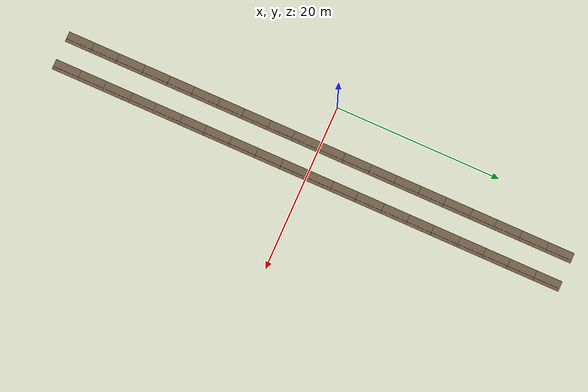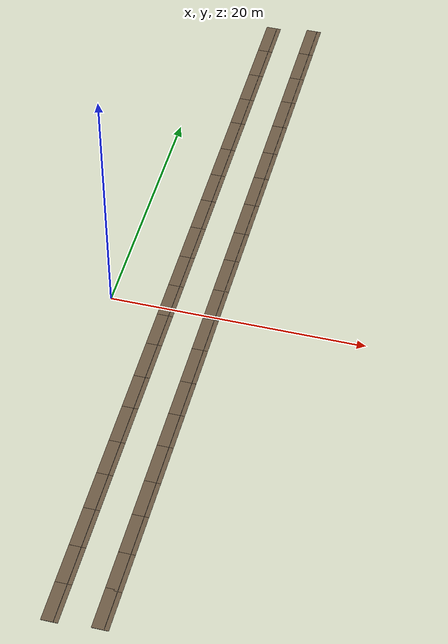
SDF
<sdf version="1.9">
 <world name="orchard_10x41">
  <model name="understory_r6">
   <static>true</static>
   <link name="link">
    <visual name="soil_1">
     <pose>5.250 -29.450 2.820 0.0000 0.0000 0.0000</pose>
     <geometry><box><size>1.2000 3.2240 0.0300</size></box></geometry>
     <material>
      <ambient>0.400 0.330 0.250 1</ambient>
      <diffuse>0.440 0.363 0.275 1</diffuse>
      <specular>0.120 0.099 0.075 1</specular>
     </material>
     <plugin filename="gz-sim-label-system" name="gz::sim::systems::Label"><label>66</label></plugin>
    </visual>
    <visual name="soil_2">
     <pose>5.250 -26.350 2.820 -0.0001 0.0000 0.0000</pose>
     <geometry><box><size>1.2000 3.2240 0.0300</size></box></geometry>
     <material>
      <ambient>0.400 0.330 0.250 1</ambient>
      <diffuse>0.440 0.363 0.275 1</diffuse>
      <specular>0.120 0.099 0.075 1</specular>
     </material>
     <plugin filename="gz-sim-label-system" name="gz::sim::systems::Label"><label>66</label></plugin>
    </visual>
    <visual name="soil_3">
     <pose>5.250 -23.250 2.820 -0.0002 0.0000 0.0000</pose>
     <geometry><box><size>1.2000 3.2240 0.0300</size></box></geometry>
     <material>
      <ambient>0.400 0.330 0.250 1</ambient>
      <diffuse>0.440 0.363 0.275 1</diffuse>
      <specular>0.120 0.099 0.075 1</specular>
     </material>
     <plugin filename="gz-sim-label-system" name="gz::sim::systems::Label"><label>66</label></plugin>
    </visual>
    <visual name="soil_4">
     <pose>5.250 -20.150 2.819 0.0000 0.0000 0.0000</pose>
     <geometry><box><size>1.2000 3.2240 0.0300</size></box></geometry>
     <material>
      <ambient>0.400 0.330 0.250 1</ambient>
      <diffuse>0.440 0.363 0.275 1</diffuse>
      <specular>0.120 0.099 0.075 1</specular>
     </material>
     <plugin filename="gz-sim-label-system" name="gz::sim::systems::Label"><label>66</label></plugin>
    </visual>
    <visual name="soil_5">
     <pose>5.250 -17.050 2.820 0.0007 0.0000 0.0000</pose>
     <geometry><box><size>1.2000 3.2240 0.0300</size></box></geometry>
     <material>
      <ambient>0.400 0.330 0.250 1</ambient>
      <diffuse>0.440 0.363 0.275 1</diffuse>
      <specular>0.120 0.099 0.075 1</specular>
     </material>
     <plugin filename="gz-sim-label-system" name="gz::sim::systems::Label"><label>66</label></plugin>
    </visual>
    <visual name="soil_6">
     <pose>5.250 -13.950 2.822 0.0002 0.0000 0.0000</pose>
     <geometry><box><size>1.2000 3.2240 0.0300</size></box></geometry>
     <material>
      <ambient>0.400 0.330 0.250 1</ambient>
      <diffuse>0.440 0.363 0.275 1</diffuse>
      <specular>0.120 0.099 0.075 1</specular>
     </material>
     <plugin filename="gz-sim-label-system" name="gz::sim::systems::Label"><label>66</label></plugin>
    </visual>
    <visual name="soil_7">
     <pose>5.250 -10.850 2.822 -0.0001 0.0000 0.0000</pose>
     <geometry><box><size>1.2000 3.2240 0.0300</size></box></geometry>
     <material>
      <ambient>0.400 0.330 0.250 1</ambient>
      <diffuse>0.440 0.363 0.275 1</diffuse>
      <specular>0.120 0.099 0.075 1</specular>
     </material>
     <plugin filename="gz-sim-label-system" name="gz::sim::systems::Label"><label>66</label></plugin>
    </visual>
    <visual name="soil_8">
     <pose>5.250 -7.750 2.823 0.0006 0.0000 0.0000</pose>
     <geometry><box><size>1.2000 3.2240 0.0300</size></box></geometry>
     <material>
      <ambient>0.400 0.330 0.250 1</ambient>
      <diffuse>0.440 0.363 0.275 1</diffuse>
      <specular>0.120 0.099 0.075 1</specular>
     </material>
     <plugin filename="gz-sim-label-system" name="gz::sim::systems::Label"><label>66</label></plugin>
    </visual>
    <visual name="soil_9">
     <pose>5.250 -4.650 2.823 -0.0001 0.0000 0.0000</pose>
     <geometry><box><size>1.2000 3.2240 0.0300</size></box></geometry>
     <material>
      <ambient>0.400 0.330 0.250 1</ambient>
      <diffuse>0.440 0.363 0.275 1</diffuse>
      <specular>0.120 0.099 0.075 1</specular>
     </material>
     <plugin filename="gz-sim-label-system" name="gz::sim::systems::Label"><label>66</label></plugin>
    </visual>
    <visual name="soil_10">
     <pose>5.250 -1.550 2.823 -0.0001 0.0000 0.0000</pose>
     <geometry><box><size>1.2000 3.2240 0.0300</size></box></geometry>
     <material>
      <ambient>0.400 0.330 0.250 1</ambient>
      <diffuse>0.440 0.363 0.275 1</diffuse>
      <specular>0.120 0.099 0.075 1</specular>
     </material>
     <plugin filename="gz-sim-label-system" name="gz::sim::systems::Label"><label>66</label></plugin>
    </visual>
    <visual name="soil_11">
     <pose>5.250 1.550 2.822 -0.0007 0.0000 0.0000</pose>
     <geometry><box><size>1.2000 3.2240 0.0300</size></box></geometry>
     <material>
      <ambient>0.400 0.330 0.250 1</ambient>
      <diffuse>0.440 0.363 0.275 1</diffuse>
      <specular>0.120 0.099 0.075 1</specular>
     </material>
     <plugin filename="gz-sim-label-system" name="gz::sim::systems::Label"><label>66</label></plugin>
    </visual>
    <visual name="soil_12">
     <pose>5.250 4.650 2.820 -0.0007 0.0000 0.0000</pose>
     <geometry><box><size>1.2000 3.2240 0.0300</size></box></geometry>
     <material>
      <ambient>0.400 0.330 0.250 1</ambient>
      <diffuse>0.440 0.363 0.275 1</diffuse>
      <specular>0.120 0.099 0.075 1</specular>
     </material>
     <plugin filename="gz-sim-label-system" name="gz::sim::systems::Label"><label>66</label></plugin>
    </visual>
    <visual name="soil_13">
     <pose>5.250 7.750 2.818 -0.0004 0.0000 0.0000</pose>
     <geometry><box><size>1.2000 3.2240 0.0300</size></box></geometry>
     <material>
      <ambient>0.400 0.330 0.250 1</ambient>
      <diffuse>0.440 0.363 0.275 1</diffuse>
      <specular>0.120 0.099 0.075 1</specular>
     </material>
     <plugin filename="gz-sim-label-system" name="gz::sim::systems::Label"><label>66</label></plugin>
    </visual>
    <visual name="soil_14">
     <pose>5.250 10.850 2.817 -0.0002 0.0000 0.0000</pose>
     <geometry><box><size>1.2000 3.2240 0.0300</size></box></geometry>
     <material>
      <ambient>0.400 0.330 0.250 1</ambient>
      <diffuse>0.440 0.363 0.275 1</diffuse>
      <specular>0.120 0.099 0.075 1</specular>
     </material>
     <plugin filename="gz-sim-label-system" name="gz::sim::systems::Label"><label>66</label></plugin>
    </visual>
    <visual name="soil_15">
     <pose>5.250 13.950 2.817 0.0001 0.0000 0.0000</pose>
     <geometry><box><size>1.2000 3.2240 0.0300</size></box></geometry>
     <material>
      <ambient>0.400 0.330 0.250 1</ambient>
      <diffuse>0.440 0.363 0.275 1</diffuse>
      <specular>0.120 0.099 0.075 1</specular>
     </material>
     <plugin filename="gz-sim-label-system" name="gz::sim::systems::Label"><label>66</label></plugin>
    </visual>
    <visual name="soil_16">
     <pose>5.250 17.050 2.817 -0.0004 0.0000 0.0000</pose>
     <geometry><box><size>1.2000 3.2240 0.0300</size></box></geometry>
     <material>
      <ambient>0.400 0.330 0.250 1</ambient>
      <diffuse>0.440 0.363 0.275 1</diffuse>
      <specular>0.120 0.099 0.075 1</specular>
     </material>
     <plugin filename="gz-sim-label-system" name="gz::sim::systems::Label"><label>66</label></plugin>
    </visual>
    <visual name="soil_17">
     <pose>5.250 20.150 2.816 -0.0001 0.0000 0.0000</pose>
     <geometry><box><size>1.2000 3.2240 0.0300</size></box></geometry>
     <material>
      <ambient>0.400 0.330 0.250 1</ambient>
      <diffuse>0.440 0.363 0.275 1</diffuse>
      <specular>0.120 0.099 0.075 1</specular>
     </material>
     <plugin filename="gz-sim-label-system" name="gz::sim::systems::Label"><label>66</label></plugin>
    </visual>
    <visual name="soil_18">
     <pose>5.250 23.250 2.816 -0.0000 0.0000 0.0000</pose>
     <geometry><box><size>1.2000 3.2240 0.0300</size></box></geometry>
     <material>
      <ambient>0.400 0.330 0.250 1</ambient>
      <diffuse>0.440 0.363 0.275 1</diffuse>
      <specular>0.120 0.099 0.075 1</specular>
     </material>
     <plugin filename="gz-sim-label-system" name="gz::sim::systems::Label"><label>66</label></plugin>
    </visual>
    <visual name="soil_19">
     <pose>5.250 26.350 2.817 0.0005 0.0000 0.0000</pose>
     <geometry><box><size>1.2000 3.2240 0.0300</size></box></geometry>
     <material>
      <ambient>0.400 0.330 0.250 1</ambient>
      <diffuse>0.440 0.363 0.275 1</diffuse>
      <specular>0.120 0.099 0.075 1</specular>
     </material>
     <plugin filename="gz-sim-label-system" name="gz::sim::systems::Label"><label>66</label></plugin>
    </visual>
    <visual name="soil_20">
     <pose>5.250 29.450 2.818 0.0004 0.0000 0.0000</pose>
     <geometry><box><size>1.2000 3.2240 0.0300</size></box></geometry>
     <material>
      <ambient>0.400 0.330 0.250 1</ambient>
      <diffuse>0.440 0.363 0.275 1</diffuse>
      <specular>0.120 0.099 0.075 1</specular>
     </material>
     <plugin filename="gz-sim-label-system" name="gz::sim::systems::Label"><label>66</label></plugin>
    </visual>
    <visual name="drip_21">
     <pose>5.530 -29.450 2.850 1.5708 0.0000 0.0000</pose>
     <geometry><cylinder><radius>0.0110</radius><length>3.1620</length></cylinder></geometry>
     <material>
      <ambient>0.100 0.100 0.110 1</ambient>
      <diffuse>0.110 0.110 0.121 1</diffuse>
      <specular>0.030 0.030 0.033 1</specular>
     </material>
     <plugin filename="gz-sim-label-system" name="gz::sim::systems::Label"><label>67</label></plugin>
    </visual>
    <visual name="drip_22">
     <pose>5.530 -26.350 2.850 1.5707 0.0000 0.0000</pose>
     <geometry><cylinder><radius>0.0110</radius><length>3.1620</length></cylinder></geometry>
     <material>
      <ambient>0.100 0.100 0.110 1</ambient>
      <diffuse>0.110 0.110 0.121 1</diffuse>
      <specular>0.030 0.030 0.033 1</specular>
     </material>
     <plugin filename="gz-sim-label-system" name="gz::sim::systems::Label"><label>67</label></plugin>
    </visual>
    <visual name="drip_23">
     <pose>5.530 -23.250 2.850 1.5706 0.0000 0.0000</pose>
     <geometry><cylinder><radius>0.0110</radius><length>3.1620</length></cylinder></geometry>
     <material>
      <ambient>0.100 0.100 0.110 1</ambient>
      <diffuse>0.110 0.110 0.121 1</diffuse>
      <specular>0.030 0.030 0.033 1</specular>
     </material>
     <plugin filename="gz-sim-label-system" name="gz::sim::systems::Label"><label>67</label></plugin>
    </visual>
    <visual name="drip_24">
     <pose>5.530 -20.150 2.849 1.5708 0.0000 0.0000</pose>
     <geometry><cylinder><radius>0.0110</radius><length>3.1620</length></cylinder></geometry>
     <material>
      <ambient>0.100 0.100 0.110 1</ambient>
      <diffuse>0.110 0.110 0.121 1</diffuse>
      <specular>0.030 0.030 0.033 1</specular>
     </material>
     <plugin filename="gz-sim-label-system" name="gz::sim::systems::Label"><label>67</label></plugin>
    </visual>
    <visual name="drip_25">
     <pose>5.530 -17.050 2.850 1.5715 0.0000 0.0000</pose>
     <geometry><cylinder><radius>0.0110</radius><length>3.1620</length></cylinder></geometry>
     <material>
      <ambient>0.100 0.100 0.110 1</ambient>
      <diffuse>0.110 0.110 0.121 1</diffuse>
      <specular>0.030 0.030 0.033 1</specular>
     </material>
     <plugin filename="gz-sim-label-system" name="gz::sim::systems::Label"><label>67</label></plugin>
    </visual>
    <visual name="drip_26">
     <pose>5.530 -13.950 2.852 1.5710 0.0000 0.0000</pose>
     <geometry><cylinder><radius>0.0110</radius><length>3.1620</length></cylinder></geometry>
     <material>
      <ambient>0.100 0.100 0.110 1</ambient>
      <diffuse>0.110 0.110 0.121 1</diffuse>
      <specular>0.030 0.030 0.033 1</specular>
     </material>
     <plugin filename="gz-sim-label-system" name="gz::sim::systems::Label"><label>67</label></plugin>
    </visual>
    <visual name="drip_27">
     <pose>5.530 -10.850 2.852 1.5707 0.0000 0.0000</pose>
     <geometry><cylinder><radius>0.0110</radius><length>3.1620</length></cylinder></geometry>
     <material>
      <ambient>0.100 0.100 0.110 1</ambient>
      <diffuse>0.110 0.110 0.121 1</diffuse>
      <specular>0.030 0.030 0.033 1</specular>
     </material>
     <plugin filename="gz-sim-label-system" name="gz::sim::systems::Label"><label>67</label></plugin>
    </visual>
    <visual name="drip_28">
     <pose>5.530 -7.750 2.853 1.5714 0.0000 0.0000</pose>
     <geometry><cylinder><radius>0.0110</radius><length>3.1620</length></cylinder></geometry>
     <material>
      <ambient>0.100 0.100 0.110 1</ambient>
      <diffuse>0.110 0.110 0.121 1</diffuse>
      <specular>0.030 0.030 0.033 1</specular>
     </material>
     <plugin filename="gz-sim-label-system" name="gz::sim::systems::Label"><label>67</label></plugin>
    </visual>
    <visual name="drip_29">
     <pose>5.530 -4.650 2.853 1.5707 0.0000 0.0000</pose>
     <geometry><cylinder><radius>0.0110</radius><length>3.1620</length></cylinder></geometry>
     <material>
      <ambient>0.100 0.100 0.110 1</ambient>
      <diffuse>0.110 0.110 0.121 1</diffuse>
      <specular>0.030 0.030 0.033 1</specular>
     </material>
     <plugin filename="gz-sim-label-system" name="gz::sim::systems::Label"><label>67</label></plugin>
    </visual>
    <visual name="drip_30">
     <pose>5.530 -1.550 2.853 1.5707 0.0000 0.0000</pose>
     <geometry><cylinder><radius>0.0110</radius><length>3.1620</length></cylinder></geometry>
     <material>
      <ambient>0.100 0.100 0.110 1</ambient>
      <diffuse>0.110 0.110 0.121 1</diffuse>
      <specular>0.030 0.030 0.033 1</specular>
     </material>
     <plugin filename="gz-sim-label-system" name="gz::sim::systems::Label"><label>67</label></plugin>
    </visual>
    <visual name="drip_31">
     <pose>5.530 1.550 2.852 1.5701 0.0000 0.0000</pose>
     <geometry><cylinder><radius>0.0110</radius><length>3.1620</length></cylinder></geometry>
     <material>
      <ambient>0.100 0.100 0.110 1</ambient>
      <diffuse>0.110 0.110 0.121 1</diffuse>
      <specular>0.030 0.030 0.033 1</specular>
     </material>
     <plugin filename="gz-sim-label-system" name="gz::sim::systems::Label"><label>67</label></plugin>
    </visual>
    <visual name="drip_32">
     <pose>5.530 4.650 2.850 1.5701 0.0000 0.0000</pose>
     <geometry><cylinder><radius>0.0110</radius><length>3.1620</length></cylinder></geometry>
     <material>
      <ambient>0.100 0.100 0.110 1</ambient>
      <diffuse>0.110 0.110 0.121 1</diffuse>
      <specular>0.030 0.030 0.033 1</specular>
     </material>
     <plugin filename="gz-sim-label-system" name="gz::sim::systems::Label"><label>67</label></plugin>
    </visual>
    <visual name="drip_33">
     <pose>5.530 7.750 2.848 1.5704 0.0000 0.0000</pose>
     <geometry><cylinder><radius>0.0110</radius><length>3.1620</length></cylinder></geometry>
     <material>
      <ambient>0.100 0.100 0.110 1</ambient>
      <diffuse>0.110 0.110 0.121 1</diffuse>
      <specular>0.030 0.030 0.033 1</specular>
     </material>
     <plugin filename="gz-sim-label-system" name="gz::sim::systems::Label"><label>67</label></plugin>
    </visual>
    <visual name="drip_34">
     <pose>5.530 10.850 2.847 1.5706 0.0000 0.0000</pose>
     <geometry><cylinder><radius>0.0110</radius><length>3.1620</length></cylinder></geometry>
     <material>
      <ambient>0.100 0.100 0.110 1</ambient>
      <diffuse>0.110 0.110 0.121 1</diffuse>
      <specular>0.030 0.030 0.033 1</specular>
     </material>
     <plugin filename="gz-sim-label-system" name="gz::sim::systems::Label"><label>67</label></plugin>
    </visual>
    <visual name="drip_35">
     <pose>5.530 13.950 2.847 1.5709 0.0000 0.0000</pose>
     <geometry><cylinder><radius>0.0110</radius><length>3.1620</length></cylinder></geometry>
     <material>
      <ambient>0.100 0.100 0.110 1</ambient>
      <diffuse>0.110 0.110 0.121 1</diffuse>
      <specular>0.030 0.030 0.033 1</specular>
     </material>
     <plugin filename="gz-sim-label-system" name="gz::sim::systems::Label"><label>67</label></plugin>
    </visual>
    <visual name="drip_36">
     <pose>5.530 17.050 2.847 1.5704 0.0000 0.0000</pose>
     <geometry><cylinder><radius>0.0110</radius><length>3.1620</length></cylinder></geometry>
     <material>
      <ambient>0.100 0.100 0.110 1</ambient>
      <diffuse>0.110 0.110 0.121 1</diffuse>
      <specular>0.030 0.030 0.033 1</specular>
     </material>
     <plugin filename="gz-sim-label-system" name="gz::sim::systems::Label"><label>67</label></plugin>
    </visual>
    <visual name="drip_37">
     <pose>5.530 20.150 2.846 1.5707 0.0000 0.0000</pose>
     <geometry><cylinder><radius>0.0110</radius><length>3.1620</length></cylinder></geometry>
     <material>
      <ambient>0.100 0.100 0.110 1</ambient>
      <diffuse>0.110 0.110 0.121 1</diffuse>
      <specular>0.030 0.030 0.033 1</specular>
     </material>
     <plugin filename="gz-sim-label-system" name="gz::sim::systems::Label"><label>67</label></plugin>
    </visual>
    <visual name="drip_38">
     <pose>5.530 23.250 2.846 1.5708 0.0000 0.0000</pose>
     <geometry><cylinder><radius>0.0110</radius><length>3.1620</length></cylinder></geometry>
     <material>
      <ambient>0.100 0.100 0.110 1</ambient>
      <diffuse>0.110 0.110 0.121 1</diffuse>
      <specular>0.030 0.030 0.033 1</specular>
     </material>
     <plugin filename="gz-sim-label-system" name="gz::sim::systems::Label"><label>67</label></plugin>
    </visual>
    <visual name="drip_39">
     <pose>5.530 26.350 2.847 1.5713 0.0000 0.0000</pose>
     <geometry><cylinder><radius>0.0110</radius><length>3.1620</length></cylinder></geometry>
     <material>
      <ambient>0.100 0.100 0.110 1</ambient>
      <diffuse>0.110 0.110 0.121 1</diffuse>
      <specular>0.030 0.030 0.033 1</specular>
     </material>
     <plugin filename="gz-sim-label-system" name="gz::sim::systems::Label"><label>67</label></plugin>
    </visual>
    <visual name="drip_40">
     <pose>5.530 29.450 2.848 1.5712 0.0000 0.0000</pose>
     <geometry><cylinder><radius>0.0110</radius><length>3.1620</length></cylinder></geometry>
     <material>
      <ambient>0.100 0.100 0.110 1</ambient>
      <diffuse>0.110 0.110 0.121 1</diffuse>
      <specular>0.030 0.030 0.033 1</specular>
     </material>
     <plugin filename="gz-sim-label-system" name="gz::sim::systems::Label"><label>67</label></plugin>
    </visual>
   </link>
  </model>
  <model name="understory_r7">
   <static>true</static>
   <link name="link">
    <visual name="soil_1">
     <pose>8.750 -29.450 3.199 -0.0000 0.0000 0.0000</pose>
     <geometry><box><size>1.2000 3.2240 0.0300</size></box></geometry>
     <material>
      <ambient>0.400 0.330 0.250 1</ambient>
      <diffuse>0.440 0.363 0.275 1</diffuse>
      <specular>0.120 0.099 0.075 1</specular>
     </material>
     <plugin filename="gz-sim-label-system" name="gz::sim::systems::Label"><label>66</label></plugin>
    </visual>
    <visual name="soil_2">
     <pose>8.750 -26.350 3.199 0.0000 0.0000 0.0000</pose>
     <geometry><box><size>1.2000 3.2240 0.0300</size></box></geometry>
     <material>
      <ambient>0.400 0.330 0.250 1</ambient>
      <diffuse>0.440 0.363 0.275 1</diffuse>
      <specular>0.120 0.099 0.075 1</specular>
     </material>
     <plugin filename="gz-sim-label-system" name="gz::sim::systems::Label"><label>66</label></plugin>
    </visual>
    <visual name="soil_3">
     <pose>8.750 -23.250 3.200 0.0001 0.0000 0.0000</pose>
     <geometry><box><size>1.2000 3.2240 0.0300</size></box></geometry>
     <material>
      <ambient>0.400 0.330 0.250 1</ambient>
      <diffuse>0.440 0.363 0.275 1</diffuse>
      <specular>0.120 0.099 0.075 1</specular>
     </material>
     <plugin filename="gz-sim-label-system" name="gz::sim::systems::Label"><label>66</label></plugin>
    </visual>
    <visual name="soil_4">
     <pose>8.750 -20.150 3.200 0.0001 0.0000 0.0000</pose>
     <geometry><box><size>1.2000 3.2240 0.0300</size></box></geometry>
     <material>
      <ambient>0.400 0.330 0.250 1</ambient>
      <diffuse>0.440 0.363 0.275 1</diffuse>
      <specular>0.120 0.099 0.075 1</specular>
     </material>
     <plugin filename="gz-sim-label-system" name="gz::sim::systems::Label"><label>66</label></plugin>
    </visual>
    <visual name="soil_5">
     <pose>8.750 -17.050 3.201 0.0005 0.0000 0.0000</pose>
     <geometry><box><size>1.2000 3.2240 0.0300</size></box></geometry>
     <material>
      <ambient>0.400 0.330 0.250 1</ambient>
      <diffuse>0.440 0.363 0.275 1</diffuse>
      <specular>0.120 0.099 0.075 1</specular>
     </material>
     <plugin filename="gz-sim-label-system" name="gz::sim::systems::Label"><label>66</label></plugin>
    </visual>
    <visual name="soil_6">
     <pose>8.750 -13.950 3.202 0.0004 0.0000 0.0000</pose>
     <geometry><box><size>1.2000 3.2240 0.0300</size></box></geometry>
     <material>
      <ambient>0.400 0.330 0.250 1</ambient>
      <diffuse>0.440 0.363 0.275 1</diffuse>
      <specular>0.120 0.099 0.075 1</specular>
     </material>
     <plugin filename="gz-sim-label-system" name="gz::sim::systems::Label"><label>66</label></plugin>
    </visual>
    <visual name="soil_7">
     <pose>8.750 -10.850 3.203 0.0001 0.0000 0.0000</pose>
     <geometry><box><size>1.2000 3.2240 0.0300</size></box></geometry>
     <material>
      <ambient>0.400 0.330 0.250 1</ambient>
      <diffuse>0.440 0.363 0.275 1</diffuse>
      <specular>0.120 0.099 0.075 1</specular>
     </material>
     <plugin filename="gz-sim-label-system" name="gz::sim::systems::Label"><label>66</label></plugin>
    </visual>
    <visual name="soil_8">
     <pose>8.750 -7.750 3.204 0.0003 0.0000 0.0000</pose>
     <geometry><box><size>1.2000 3.2240 0.0300</size></box></geometry>
     <material>
      <ambient>0.400 0.330 0.250 1</ambient>
      <diffuse>0.440 0.363 0.275 1</diffuse>
      <specular>0.120 0.099 0.075 1</specular>
     </material>
     <plugin filename="gz-sim-label-system" name="gz::sim::systems::Label"><label>66</label></plugin>
    </visual>
    <visual name="soil_9">
     <pose>8.750 -4.650 3.204 -0.0001 0.0000 0.0000</pose>
     <geometry><box><size>1.2000 3.2240 0.0300</size></box></geometry>
     <material>
      <ambient>0.400 0.330 0.250 1</ambient>
      <diffuse>0.440 0.363 0.275 1</diffuse>
      <specular>0.120 0.099 0.075 1</specular>
     </material>
     <plugin filename="gz-sim-label-system" name="gz::sim::systems::Label"><label>66</label></plugin>
    </visual>
    <visual name="soil_10">
     <pose>8.750 -1.550 3.203 -0.0003 0.0000 0.0000</pose>
     <geometry><box><size>1.2000 3.2240 0.0300</size></box></geometry>
     <material>
      <ambient>0.400 0.330 0.250 1</ambient>
      <diffuse>0.440 0.363 0.275 1</diffuse>
      <specular>0.120 0.099 0.075 1</specular>
     </material>
     <plugin filename="gz-sim-label-system" name="gz::sim::systems::Label"><label>66</label></plugin>
    </visual>
    <visual name="soil_11">
     <pose>8.750 1.550 3.203 0.0001 0.0000 0.0000</pose>
     <geometry><box><size>1.2000 3.2240 0.0300</size></box></geometry>
     <material>
      <ambient>0.400 0.330 0.250 1</ambient>
      <diffuse>0.440 0.363 0.275 1</diffuse>
      <specular>0.120 0.099 0.075 1</specular>
     </material>
     <plugin filename="gz-sim-label-system" name="gz::sim::systems::Label"><label>66</label></plugin>
    </visual>
    <visual name="soil_12">
     <pose>8.750 4.650 3.203 0.0001 0.0000 0.0000</pose>
     <geometry><box><size>1.2000 3.2240 0.0300</size></box></geometry>
     <material>
      <ambient>0.400 0.330 0.250 1</ambient>
      <diffuse>0.440 0.363 0.275 1</diffuse>
      <specular>0.120 0.099 0.075 1</specular>
     </material>
     <plugin filename="gz-sim-label-system" name="gz::sim::systems::Label"><label>66</label></plugin>
    </visual>
    <visual name="soil_13">
     <pose>8.750 7.750 3.204 0.0002 0.0000 0.0000</pose>
     <geometry><box><size>1.2000 3.2240 0.0300</size></box></geometry>
     <material>
      <ambient>0.400 0.330 0.250 1</ambient>
      <diffuse>0.440 0.363 0.275 1</diffuse>
      <specular>0.120 0.099 0.075 1</specular>
     </material>
     <plugin filename="gz-sim-label-system" name="gz::sim::systems::Label"><label>66</label></plugin>
    </visual>
    <visual name="soil_14">
     <pose>8.750 10.850 3.204 -0.0001 0.0000 0.0000</pose>
     <geometry><box><size>1.2000 3.2240 0.0300</size></box></geometry>
     <material>
      <ambient>0.400 0.330 0.250 1</ambient>
      <diffuse>0.440 0.363 0.275 1</diffuse>
      <specular>0.120 0.099 0.075 1</specular>
     </material>
     <plugin filename="gz-sim-label-system" name="gz::sim::systems::Label"><label>66</label></plugin>
    </visual>
    <visual name="soil_15">
     <pose>8.750 13.950 3.203 -0.0003 0.0000 0.0000</pose>
     <geometry><box><size>1.2000 3.2240 0.0300</size></box></geometry>
     <material>
      <ambient>0.400 0.330 0.250 1</ambient>
      <diffuse>0.440 0.363 0.275 1</diffuse>
      <specular>0.120 0.099 0.075 1</specular>
     </material>
     <plugin filename="gz-sim-label-system" name="gz::sim::systems::Label"><label>66</label></plugin>
    </visual>
    <visual name="soil_16">
     <pose>8.750 17.050 3.202 -0.0004 0.0000 0.0000</pose>
     <geometry><box><size>1.2000 3.2240 0.0300</size></box></geometry>
     <material>
      <ambient>0.400 0.330 0.250 1</ambient>
      <diffuse>0.440 0.363 0.275 1</diffuse>
      <specular>0.120 0.099 0.075 1</specular>
     </material>
     <plugin filename="gz-sim-label-system" name="gz::sim::systems::Label"><label>66</label></plugin>
    </visual>
    <visual name="soil_17">
     <pose>8.750 20.150 3.201 -0.0001 0.0000 0.0000</pose>
     <geometry><box><size>1.2000 3.2240 0.0300</size></box></geometry>
     <material>
      <ambient>0.400 0.330 0.250 1</ambient>
      <diffuse>0.440 0.363 0.275 1</diffuse>
      <specular>0.120 0.099 0.075 1</specular>
     </material>
     <plugin filename="gz-sim-label-system" name="gz::sim::systems::Label"><label>66</label></plugin>
    </visual>
    <visual name="soil_18">
     <pose>8.750 23.250 3.201 0.0001 0.0000 0.0000</pose>
     <geometry><box><size>1.2000 3.2240 0.0300</size></box></geometry>
     <material>
      <ambient>0.400 0.330 0.250 1</ambient>
      <diffuse>0.440 0.363 0.275 1</diffuse>
      <specular>0.120 0.099 0.075 1</specular>
     </material>
     <plugin filename="gz-sim-label-system" name="gz::sim::systems::Label"><label>66</label></plugin>
    </visual>
    <visual name="soil_19">
     <pose>8.750 26.350 3.202 0.0002 0.0000 0.0000</pose>
     <geometry><box><size>1.2000 3.2240 0.0300</size></box></geometry>
     <material>
      <ambient>0.400 0.330 0.250 1</ambient>
      <diffuse>0.440 0.363 0.275 1</diffuse>
      <specular>0.120 0.099 0.075 1</specular>
     </material>
     <plugin filename="gz-sim-label-system" name="gz::sim::systems::Label"><label>66</label></plugin>
    </visual>
    <visual name="soil_20">
     <pose>8.750 29.450 3.202 -0.0001 0.0000 0.0000</pose>
     <geometry><box><size>1.2000 3.2240 0.0300</size></box></geometry>
     <material>
      <ambient>0.400 0.330 0.250 1</ambient>
      <diffuse>0.440 0.363 0.275 1</diffuse>
      <specular>0.120 0.099 0.075 1</specular>
     </material>
     <plugin filename="gz-sim-label-system" name="gz::sim::systems::Label"><label>66</label></plugin>
    </visual>
    <visual name="drip_21">
     <pose>9.030 -29.450 3.229 1.5708 0.0000 0.0000</pose>
     <geometry><cylinder><radius>0.0110</radius><length>3.1620</length></cylinder></geometry>
     <material>
      <ambient>0.100 0.100 0.110 1</ambient>
      <diffuse>0.110 0.110 0.121 1</diffuse>
      <specular>0.030 0.030 0.033 1</specular>
     </material>
     <plugin filename="gz-sim-label-system" name="gz::sim::systems::Label"><label>67</label></plugin>
    </visual>
    <visual name="drip_22">
     <pose>9.030 -26.350 3.229 1.5708 0.0000 0.0000</pose>
     <geometry><cylinder><radius>0.0110</radius><length>3.1620</length></cylinder></geometry>
     <material>
      <ambient>0.100 0.100 0.110 1</ambient>
      <diffuse>0.110 0.110 0.121 1</diffuse>
      <specular>0.030 0.030 0.033 1</specular>
     </material>
     <plugin filename="gz-sim-label-system" name="gz::sim::systems::Label"><label>67</label></plugin>
    </visual>
    <visual name="drip_23">
     <pose>9.030 -23.250 3.230 1.5709 0.0000 0.0000</pose>
     <geometry><cylinder><radius>0.0110</radius><length>3.1620</length></cylinder></geometry>
     <material>
      <ambient>0.100 0.100 0.110 1</ambient>
      <diffuse>0.110 0.110 0.121 1</diffuse>
      <specular>0.030 0.030 0.033 1</specular>
     </material>
     <plugin filename="gz-sim-label-system" name="gz::sim::systems::Label"><label>67</label></plugin>
    </visual>
    <visual name="drip_24">
     <pose>9.030 -20.150 3.230 1.5709 0.0000 0.0000</pose>
     <geometry><cylinder><radius>0.0110</radius><length>3.1620</length></cylinder></geometry>
     <material>
      <ambient>0.100 0.100 0.110 1</ambient>
      <diffuse>0.110 0.110 0.121 1</diffuse>
      <specular>0.030 0.030 0.033 1</specular>
     </material>
     <plugin filename="gz-sim-label-system" name="gz::sim::systems::Label"><label>67</label></plugin>
    </visual>
    <visual name="drip_25">
     <pose>9.030 -17.050 3.231 1.5713 0.0000 0.0000</pose>
     <geometry><cylinder><radius>0.0110</radius><length>3.1620</length></cylinder></geometry>
     <material>
      <ambient>0.100 0.100 0.110 1</ambient>
      <diffuse>0.110 0.110 0.121 1</diffuse>
      <specular>0.030 0.030 0.033 1</specular>
     </material>
     <plugin filename="gz-sim-label-system" name="gz::sim::systems::Label"><label>67</label></plugin>
    </visual>
    <visual name="drip_26">
     <pose>9.030 -13.950 3.232 1.5712 0.0000 0.0000</pose>
     <geometry><cylinder><radius>0.0110</radius><length>3.1620</length></cylinder></geometry>
     <material>
      <ambient>0.100 0.100 0.110 1</ambient>
      <diffuse>0.110 0.110 0.121 1</diffuse>
      <specular>0.030 0.030 0.033 1</specular>
     </material>
     <plugin filename="gz-sim-label-system" name="gz::sim::systems::Label"><label>67</label></plugin>
    </visual>
    <visual name="drip_27">
     <pose>9.030 -10.850 3.233 1.5709 0.0000 0.0000</pose>
     <geometry><cylinder><radius>0.0110</radius><length>3.1620</length></cylinder></geometry>
     <material>
      <ambient>0.100 0.100 0.110 1</ambient>
      <diffuse>0.110 0.110 0.121 1</diffuse>
      <specular>0.030 0.030 0.033 1</specular>
     </material>
     <plugin filename="gz-sim-label-system" name="gz::sim::systems::Label"><label>67</label></plugin>
    </visual>
    <visual name="drip_28">
     <pose>9.030 -7.750 3.234 1.5711 0.0000 0.0000</pose>
     <geometry><cylinder><radius>0.0110</radius><length>3.1620</length></cylinder></geometry>
     <material>
      <ambient>0.100 0.100 0.110 1</ambient>
      <diffuse>0.110 0.110 0.121 1</diffuse>
      <specular>0.030 0.030 0.033 1</specular>
     </material>
     <plugin filename="gz-sim-label-system" name="gz::sim::systems::Label"><label>67</label></plugin>
    </visual>
    <visual name="drip_29">
     <pose>9.030 -4.650 3.234 1.5707 0.0000 0.0000</pose>
     <geometry><cylinder><radius>0.0110</radius><length>3.1620</length></cylinder></geometry>
     <material>
      <ambient>0.100 0.100 0.110 1</ambient>
      <diffuse>0.110 0.110 0.121 1</diffuse>
      <specular>0.030 0.030 0.033 1</specular>
     </material>
     <plugin filename="gz-sim-label-system" name="gz::sim::systems::Label"><label>67</label></plugin>
    </visual>
    <visual name="drip_30">
     <pose>9.030 -1.550 3.233 1.5705 0.0000 0.0000</pose>
     <geometry><cylinder><radius>0.0110</radius><length>3.1620</length></cylinder></geometry>
     <material>
      <ambient>0.100 0.100 0.110 1</ambient>
      <diffuse>0.110 0.110 0.121 1</diffuse>
      <specular>0.030 0.030 0.033 1</specular>
     </material>
     <plugin filename="gz-sim-label-system" name="gz::sim::systems::Label"><label>67</label></plugin>
    </visual>
    <visual name="drip_31">
     <pose>9.030 1.550 3.233 1.5709 0.0000 0.0000</pose>
     <geometry><cylinder><radius>0.0110</radius><length>3.1620</length></cylinder></geometry>
     <material>
      <ambient>0.100 0.100 0.110 1</ambient>
      <diffuse>0.110 0.110 0.121 1</diffuse>
      <specular>0.030 0.030 0.033 1</specular>
     </material>
     <plugin filename="gz-sim-label-system" name="gz::sim::systems::Label"><label>67</label></plugin>
    </visual>
    <visual name="drip_32">
     <pose>9.030 4.650 3.233 1.5709 0.0000 0.0000</pose>
     <geometry><cylinder><radius>0.0110</radius><length>3.1620</length></cylinder></geometry>
     <material>
      <ambient>0.100 0.100 0.110 1</ambient>
      <diffuse>0.110 0.110 0.121 1</diffuse>
      <specular>0.030 0.030 0.033 1</specular>
     </material>
     <plugin filename="gz-sim-label-system" name="gz::sim::systems::Label"><label>67</label></plugin>
    </visual>
    <visual name="drip_33">
     <pose>9.030 7.750 3.234 1.5710 0.0000 0.0000</pose>
     <geometry><cylinder><radius>0.0110</radius><length>3.1620</length></cylinder></geometry>
     <material>
      <ambient>0.100 0.100 0.110 1</ambient>
      <diffuse>0.110 0.110 0.121 1</diffuse>
      <specular>0.030 0.030 0.033 1</specular>
     </material>
     <plugin filename="gz-sim-label-system" name="gz::sim::systems::Label"><label>67</label></plugin>
    </visual>
    <visual name="drip_34">
     <pose>9.030 10.850 3.234 1.5707 0.0000 0.0000</pose>
     <geometry><cylinder><radius>0.0110</radius><length>3.1620</length></cylinder></geometry>
     <material>
      <ambient>0.100 0.100 0.110 1</ambient>
      <diffuse>0.110 0.110 0.121 1</diffuse>
      <specular>0.030 0.030 0.033 1</specular>
     </material>
     <plugin filename="gz-sim-label-system" name="gz::sim::systems::Label"><label>67</label></plugin>
    </visual>
    <visual name="drip_35">
     <pose>9.030 13.950 3.233 1.5705 0.0000 0.0000</pose>
     <geometry><cylinder><radius>0.0110</radius><length>3.1620</length></cylinder></geometry>
     <material>
      <ambient>0.100 0.100 0.110 1</ambient>
      <diffuse>0.110 0.110 0.121 1</diffuse>
      <specular>0.030 0.030 0.033 1</specular>
     </material>
     <plugin filename="gz-sim-label-system" name="gz::sim::systems::Label"><label>67</label></plugin>
    </visual>
    <visual name="drip_36">
     <pose>9.030 17.050 3.232 1.5704 0.0000 0.0000</pose>
     <geometry><cylinder><radius>0.0110</radius><length>3.1620</length></cylinder></geometry>
     <material>
      <ambient>0.100 0.100 0.110 1</ambient>
      <diffuse>0.110 0.110 0.121 1</diffuse>
      <specular>0.030 0.030 0.033 1</specular>
     </material>
     <plugin filename="gz-sim-label-system" name="gz::sim::systems::Label"><label>67</label></plugin>
    </visual>
    <visual name="drip_37">
     <pose>9.030 20.150 3.231 1.5707 0.0000 0.0000</pose>
     <geometry><cylinder><radius>0.0110</radius><length>3.1620</length></cylinder></geometry>
     <material>
      <ambient>0.100 0.100 0.110 1</ambient>
      <diffuse>0.110 0.110 0.121 1</diffuse>
      <specular>0.030 0.030 0.033 1</specular>
     </material>
     <plugin filename="gz-sim-label-system" name="gz::sim::systems::Label"><label>67</label></plugin>
    </visual>
    <visual name="drip_38">
     <pose>9.030 23.250 3.231 1.5709 0.0000 0.0000</pose>
     <geometry><cylinder><radius>0.0110</radius><length>3.1620</length></cylinder></geometry>
     <material>
      <ambient>0.100 0.100 0.110 1</ambient>
      <diffuse>0.110 0.110 0.121 1</diffuse>
      <specular>0.030 0.030 0.033 1</specular>
     </material>
     <plugin filename="gz-sim-label-system" name="gz::sim::systems::Label"><label>67</label></plugin>
    </visual>
    <visual name="drip_39">
     <pose>9.030 26.350 3.232 1.5710 0.0000 0.0000</pose>
     <geometry><cylinder><radius>0.0110</radius><length>3.1620</length></cylinder></geometry>
     <material>
      <ambient>0.100 0.100 0.110 1</ambient>
      <diffuse>0.110 0.110 0.121 1</diffuse>
      <specular>0.030 0.030 0.033 1</specular>
     </material>
     <plugin filename="gz-sim-label-system" name="gz::sim::systems::Label"><label>67</label></plugin>
    </visual>
    <visual name="drip_40">
     <pose>9.030 29.450 3.232 1.5707 0.0000 0.0000</pose>
     <geometry><cylinder><radius>0.0110</radius><length>3.1620</length></cylinder></geometry>
     <material>
      <ambient>0.100 0.100 0.110 1</ambient>
      <diffuse>0.110 0.110 0.121 1</diffuse>
      <specular>0.030 0.030 0.033 1</specular>
     </material>
     <plugin filename="gz-sim-label-system" name="gz::sim::systems::Label"><label>67</label></plugin>
    </visual>
   </link>
  </model>
 </world>
</sdf>
